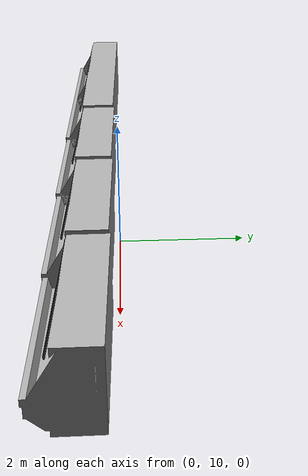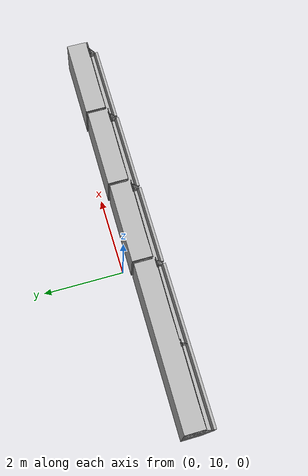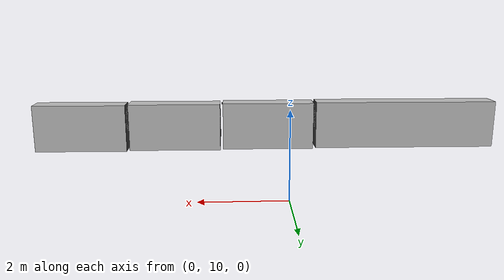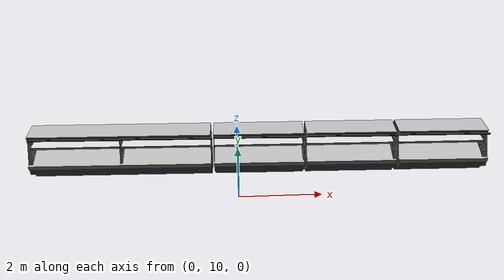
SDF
<?xml version="1.0" ?>
<sdf version="1.5">
  <model name="store">
    <static>true</static>
    <link name="produce_section">
      <collision name="collision">
        <geometry>
          <mesh>
            <uri>model://grocery_store/produce_section/produce_section.dae</uri>
          </mesh>
        </geometry>
        <max_contacts>10</max_contacts>
        <surface>
          <contact>
            <ode/>
          </contact>
          <bounce/>
          <friction>
            <torsional>
              <ode/>
            </torsional>
            <ode/>
          </friction>
        </surface>
      </collision>
      <visual name="visual">
        <geometry>
          <mesh>
            <uri>model://grocery_store/produce_section/produce_section.dae</uri>
          </mesh>
        </geometry>
        <cast_shadows>false</cast_shadows>
      </visual>
      <self_collide>0</self_collide>
      <enable_wind>0</enable_wind>
      <kinematic>0</kinematic>
    </link>
  </model>
</sdf>
